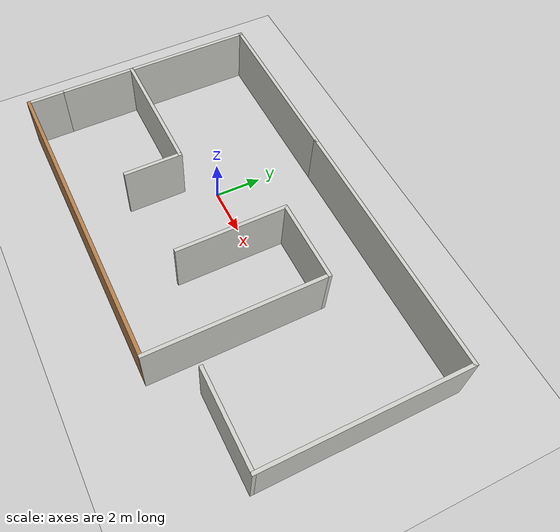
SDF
<sdf version="1.7">
 <world name="default">
  <light name="sun" type="directional">
   <pose>0 0 10 0 -0 0</pose>
   <diffuse>0.8 0.8 0.8 1</diffuse>
   <specular>0.2 0.2 0.2 1</specular>
   <attenuation>
    <range>1000</range>
    <constant>0.9</constant>
    <linear>0.01</linear>
    <quadratic>0.001</quadratic>
   </attenuation>
   <direction>-0.5 0.1 -0.9</direction>
   <spot><inner_angle>0</inner_angle><outer_angle>0</outer_angle><falloff>0</falloff></spot>
  </light>
  <model name="ground_plane">
   <static>1</static>
   <link name="link">
    <collision name="collision">
     <geometry><plane><normal>0 0 1</normal><size>100 100</size></plane></geometry>
     <surface>
      <contact><collide_bitmask>65535</collide_bitmask></contact>
      <friction><ode><mu>100</mu><mu2>50</mu2></ode></friction>
     </surface>
    </collision>
    <visual name="visual">
     <cast_shadows>0</cast_shadows>
     <geometry><plane><normal>0 0 1</normal><size>100 100</size></plane></geometry>
     <material>
      <script><uri>file://media/materials/scripts/gazebo.material</uri><name>Gazebo/Grey</name></script>
     </material>
    </visual>
   </link>
  </model>
  <gravity>0 0 -9.8</gravity>
  <magnetic_field>6e-06 2.3e-05 -4.2e-05</magnetic_field>
  <atmosphere type="adiabatic"/>
  <physics type="ode">
   <max_step_size>0.001</max_step_size>
   <real_time_factor>1</real_time_factor>
   <real_time_update_rate>1000</real_time_update_rate>
  </physics>
  <scene><ambient>0.4 0.4 0.4 1</ambient><background>0.7 0.7 0.7 1</background><shadows>1</shadows></scene>
  <spherical_coordinates>
   <surface_model>EARTH_WGS84</surface_model>
   <latitude_deg>0</latitude_deg>
   <longitude_deg>0</longitude_deg>
   <elevation>0</elevation>
   <heading_deg>0</heading_deg>
  </spherical_coordinates>
  <model name="Untitled">
   <link name="Wall_1">
    <pose>-8.975 -1.875 0 0 -0 1.5708</pose>
    <visual name="Wall_1_Visual">
     <pose>0 0 1.25 0 -0 0</pose>
     <geometry><box><size>3.25 0.15 2.5</size></box></geometry>
     <material>
      <script><uri>file://media/materials/scripts/gazebo.material</uri><name>Gazebo/CeilingTiled</name></script>
      <ambient>1 1 1 1</ambient>
      <shader type="pixel"/>
     </material>
     <meta><layer>0</layer></meta>
    </visual>
    <collision name="Wall_1_Collision">
     <pose>0 0 1.25 0 -0 0</pose>
     <geometry><box><size>3.25 0.15 2.5</size></box></geometry>
     <surface>
      <friction>
       <ode><mu>1</mu><mu2>1</mu2><fdir1>0 0 0</fdir1><slip1>0</slip1><slip2>0</slip2></ode>
       <torsional>
        <coefficient>1</coefficient>
        <patch_radius>0</patch_radius>
        <surface_radius>0</surface_radius>
        <use_patch_radius>1</use_patch_radius>
        <ode><slip>0</slip></ode>
       </torsional>
      </friction>
      <bounce><restitution_coefficient>0</restitution_coefficient><threshold>1e+06</threshold></bounce>
      <contact>
       <collide_without_contact>0</collide_without_contact>
       <collide_without_contact_bitmask>1</collide_without_contact_bitmask>
       <collide_bitmask>1</collide_bitmask>
       <ode>
        <soft_cfm>0</soft_cfm>
        <soft_erp>0.2</soft_erp>
        <kp>1e+13</kp>
        <kd>1</kd>
        <max_vel>0.01</max_vel>
        <min_depth>0</min_depth>
       </ode>
       <bullet>
        <split_impulse>1</split_impulse>
        <split_impulse_penetration_threshold>-0.01</split_impulse_penetration_threshold>
        <soft_cfm>0</soft_cfm>
        <soft_erp>0.2</soft_erp>
        <kp>1e+13</kp>
        <kd>1</kd>
       </bullet>
      </contact>
     </surface>
    </collision>
   </link>
   <link name="Wall_11">
    <pose>-8.975 2.35 0 0 -0 1.5708</pose>
    <visual name="Wall_11_Visual">
     <pose>0 0 1.25 0 -0 0</pose>
     <geometry><box><size>5.5 0.15 2.5</size></box></geometry>
     <material>
      <script><uri>file://media/materials/scripts/gazebo.material</uri><name>Gazebo/CeilingTiled</name></script>
      <ambient>1 1 1 1</ambient>
      <shader type="pixel"/>
     </material>
     <meta><layer>0</layer></meta>
    </visual>
    <collision name="Wall_11_Collision">
     <pose>0 0 1.25 0 -0 0</pose>
     <geometry><box><size>5.5 0.15 2.5</size></box></geometry>
     <surface>
      <friction>
       <ode><mu>1</mu><mu2>1</mu2><fdir1>0 0 0</fdir1><slip1>0</slip1><slip2>0</slip2></ode>
       <torsional>
        <coefficient>1</coefficient>
        <patch_radius>0</patch_radius>
        <surface_radius>0</surface_radius>
        <use_patch_radius>1</use_patch_radius>
        <ode><slip>0</slip></ode>
       </torsional>
      </friction>
      <bounce><restitution_coefficient>0</restitution_coefficient><threshold>1e+06</threshold></bounce>
      <contact>
       <collide_without_contact>0</collide_without_contact>
       <collide_without_contact_bitmask>1</collide_without_contact_bitmask>
       <collide_bitmask>1</collide_bitmask>
       <ode>
        <soft_cfm>0</soft_cfm>
        <soft_erp>0.2</soft_erp>
        <kp>1e+13</kp>
        <kd>1</kd>
        <max_vel>0.01</max_vel>
        <min_depth>0</min_depth>
       </ode>
       <bullet>
        <split_impulse>1</split_impulse>
        <split_impulse_penetration_threshold>-0.01</split_impulse_penetration_threshold>
        <soft_cfm>0</soft_cfm>
        <soft_erp>0.2</soft_erp>
        <kp>1e+13</kp>
        <kd>1</kd>
       </bullet>
      </contact>
     </surface>
    </collision>
   </link>
   <link name="Wall_12">
    <pose>-5.425 5.025 0 0 -0 0</pose>
    <visual name="Wall_12_Visual">
     <pose>0 0 1.25 0 -0 0</pose>
     <geometry><box><size>7.25 0.15 2.5</size></box></geometry>
     <material>
      <script><uri>file://media/materials/scripts/gazebo.material</uri><name>Gazebo/CeilingTiled</name></script>
      <ambient>1 1 1 1</ambient>
      <shader type="pixel"/>
     </material>
     <meta><layer>0</layer></meta>
    </visual>
    <collision name="Wall_12_Collision">
     <pose>0 0 1.25 0 -0 0</pose>
     <geometry><box><size>7.25 0.15 2.5</size></box></geometry>
     <surface>
      <friction>
       <ode><mu>1</mu><mu2>1</mu2><fdir1>0 0 0</fdir1><slip1>0</slip1><slip2>0</slip2></ode>
       <torsional>
        <coefficient>1</coefficient>
        <patch_radius>0</patch_radius>
        <surface_radius>0</surface_radius>
        <use_patch_radius>1</use_patch_radius>
        <ode><slip>0</slip></ode>
       </torsional>
      </friction>
      <bounce><restitution_coefficient>0</restitution_coefficient><threshold>1e+06</threshold></bounce>
      <contact>
       <collide_without_contact>0</collide_without_contact>
       <collide_without_contact_bitmask>1</collide_without_contact_bitmask>
       <collide_bitmask>1</collide_bitmask>
       <ode>
        <soft_cfm>0</soft_cfm>
        <soft_erp>0.2</soft_erp>
        <kp>1e+13</kp>
        <kd>1</kd>
        <max_vel>0.01</max_vel>
        <min_depth>0</min_depth>
       </ode>
       <bullet>
        <split_impulse>1</split_impulse>
        <split_impulse_penetration_threshold>-0.01</split_impulse_penetration_threshold>
        <soft_cfm>0</soft_cfm>
        <soft_erp>0.2</soft_erp>
        <kp>1e+13</kp>
        <kd>1</kd>
       </bullet>
      </contact>
     </surface>
    </collision>
   </link>
   <link name="Wall_13">
    <pose>3.55 5.025 0 0 -0 0</pose>
    <visual name="Wall_13_Visual">
     <pose>0 0 1.25 0 -0 0</pose>
     <geometry><box><size>11 0.15 2.5</size></box></geometry>
     <material>
      <script><uri>file://media/materials/scripts/gazebo.material</uri><name>Gazebo/CeilingTiled</name></script>
      <ambient>1 1 1 1</ambient>
      <shader type="pixel"/>
     </material>
     <meta><layer>0</layer></meta>
    </visual>
    <collision name="Wall_13_Collision">
     <pose>0 0 1.25 0 -0 0</pose>
     <geometry><box><size>11 0.15 2.5</size></box></geometry>
     <surface>
      <friction>
       <ode><mu>1</mu><mu2>1</mu2><fdir1>0 0 0</fdir1><slip1>0</slip1><slip2>0</slip2></ode>
       <torsional>
        <coefficient>1</coefficient>
        <patch_radius>0</patch_radius>
        <surface_radius>0</surface_radius>
        <use_patch_radius>1</use_patch_radius>
        <ode><slip>0</slip></ode>
       </torsional>
      </friction>
      <bounce><restitution_coefficient>0</restitution_coefficient><threshold>1e+06</threshold></bounce>
      <contact>
       <collide_without_contact>0</collide_without_contact>
       <collide_without_contact_bitmask>1</collide_without_contact_bitmask>
       <collide_bitmask>1</collide_bitmask>
       <ode>
        <soft_cfm>0</soft_cfm>
        <soft_erp>0.2</soft_erp>
        <kp>1e+13</kp>
        <kd>1</kd>
        <max_vel>0.01</max_vel>
        <min_depth>0</min_depth>
       </ode>
       <bullet>
        <split_impulse>1</split_impulse>
        <split_impulse_penetration_threshold>-0.01</split_impulse_penetration_threshold>
        <soft_cfm>0</soft_cfm>
        <soft_erp>0.2</soft_erp>
        <kp>1e+13</kp>
        <kd>1</kd>
       </bullet>
      </contact>
     </surface>
    </collision>
   </link>
   <link name="Wall_14">
    <pose>8.975 0.85 0 0 0 -1.5708</pose>
    <visual name="Wall_14_Visual">
     <pose>0 0 1.25 0 -0 0</pose>
     <geometry><box><size>8.5 0.15 2.5</size></box></geometry>
     <material>
      <script><uri>file://media/materials/scripts/gazebo.material</uri><name>Gazebo/CeilingTiled</name></script>
      <ambient>1 1 1 1</ambient>
      <shader type="pixel"/>
     </material>
     <meta><layer>0</layer></meta>
    </visual>
    <collision name="Wall_14_Collision">
     <pose>0 0 1.25 0 -0 0</pose>
     <geometry><box><size>8.5 0.15 2.5</size></box></geometry>
     <surface>
      <friction>
       <ode><mu>1</mu><mu2>1</mu2><fdir1>0 0 0</fdir1><slip1>0</slip1><slip2>0</slip2></ode>
       <torsional>
        <coefficient>1</coefficient>
        <patch_radius>0</patch_radius>
        <surface_radius>0</surface_radius>
        <use_patch_radius>1</use_patch_radius>
        <ode><slip>0</slip></ode>
       </torsional>
      </friction>
      <bounce><restitution_coefficient>0</restitution_coefficient><threshold>1e+06</threshold></bounce>
      <contact>
       <collide_without_contact>0</collide_without_contact>
       <collide_without_contact_bitmask>1</collide_without_contact_bitmask>
       <collide_bitmask>1</collide_bitmask>
       <ode>
        <soft_cfm>0</soft_cfm>
        <soft_erp>0.2</soft_erp>
        <kp>1e+13</kp>
        <kd>1</kd>
        <max_vel>0.01</max_vel>
        <min_depth>0</min_depth>
       </ode>
       <bullet>
        <split_impulse>1</split_impulse>
        <split_impulse_penetration_threshold>-0.01</split_impulse_penetration_threshold>
        <soft_cfm>0</soft_cfm>
        <soft_erp>0.2</soft_erp>
        <kp>1e+13</kp>
        <kd>1</kd>
       </bullet>
      </contact>
     </surface>
    </collision>
   </link>
   <link name="Wall_15">
    <pose>7.05 -3.325 0 0 -0 3.14159</pose>
    <visual name="Wall_15_Visual">
     <pose>0 0 1.25 0 -0 0</pose>
     <geometry><box><size>4 0.15 2.5</size></box></geometry>
     <material>
      <script><uri>file://media/materials/scripts/gazebo.material</uri><name>Gazebo/CeilingTiled</name></script>
      <ambient>1 1 1 1</ambient>
      <shader type="pixel"/>
     </material>
     <meta><layer>0</layer></meta>
    </visual>
    <collision name="Wall_15_Collision">
     <pose>0 0 1.25 0 -0 0</pose>
     <geometry><box><size>4 0.15 2.5</size></box></geometry>
     <surface>
      <friction>
       <ode><mu>1</mu><mu2>1</mu2><fdir1>0 0 0</fdir1><slip1>0</slip1><slip2>0</slip2></ode>
       <torsional>
        <coefficient>1</coefficient>
        <patch_radius>0</patch_radius>
        <surface_radius>0</surface_radius>
        <use_patch_radius>1</use_patch_radius>
        <ode><slip>0</slip></ode>
       </torsional>
      </friction>
      <bounce><restitution_coefficient>0</restitution_coefficient><threshold>1e+06</threshold></bounce>
      <contact>
       <collide_without_contact>0</collide_without_contact>
       <collide_without_contact_bitmask>1</collide_without_contact_bitmask>
       <collide_bitmask>1</collide_bitmask>
       <ode>
        <soft_cfm>0</soft_cfm>
        <soft_erp>0.2</soft_erp>
        <kp>1e+13</kp>
        <kd>1</kd>
        <max_vel>0.01</max_vel>
        <min_depth>0</min_depth>
       </ode>
       <bullet>
        <split_impulse>1</split_impulse>
        <split_impulse_penetration_threshold>-0.01</split_impulse_penetration_threshold>
        <soft_cfm>0</soft_cfm>
        <soft_erp>0.2</soft_erp>
        <kp>1e+13</kp>
        <kd>1</kd>
       </bullet>
      </contact>
     </surface>
    </collision>
   </link>
   <link name="Wall_2">
    <pose>-6.3 -0.325 0 0 -0 0</pose>
    <visual name="Wall_2_Visual">
     <pose>0 0 1.25 0 -0 0</pose>
     <geometry><box><size>5.5 0.15 2.5</size></box></geometry>
     <material>
      <script><uri>file://media/materials/scripts/gazebo.material</uri><name>Gazebo/CeilingTiled</name></script>
      <ambient>1 1 1 1</ambient>
      <shader type="pixel"/>
     </material>
     <meta><layer>0</layer></meta>
    </visual>
    <collision name="Wall_2_Collision">
     <pose>0 0 1.25 0 -0 0</pose>
     <geometry><box><size>5.5 0.15 2.5</size></box></geometry>
     <surface>
      <friction>
       <ode><mu>1</mu><mu2>1</mu2><fdir1>0 0 0</fdir1><slip1>0</slip1><slip2>0</slip2></ode>
       <torsional>
        <coefficient>1</coefficient>
        <patch_radius>0</patch_radius>
        <surface_radius>0</surface_radius>
        <use_patch_radius>1</use_patch_radius>
        <ode><slip>0</slip></ode>
       </torsional>
      </friction>
      <bounce><restitution_coefficient>0</restitution_coefficient><threshold>1e+06</threshold></bounce>
      <contact>
       <collide_without_contact>0</collide_without_contact>
       <collide_without_contact_bitmask>1</collide_without_contact_bitmask>
       <collide_bitmask>1</collide_bitmask>
       <ode>
        <soft_cfm>0</soft_cfm>
        <soft_erp>0.2</soft_erp>
        <kp>1e+13</kp>
        <kd>1</kd>
        <max_vel>0.01</max_vel>
        <min_depth>0</min_depth>
       </ode>
       <bullet>
        <split_impulse>1</split_impulse>
        <split_impulse_penetration_threshold>-0.01</split_impulse_penetration_threshold>
        <soft_cfm>0</soft_cfm>
        <soft_erp>0.2</soft_erp>
        <kp>1e+13</kp>
        <kd>1</kd>
       </bullet>
      </contact>
     </surface>
    </collision>
   </link>
   <link name="Wall_3">
    <pose>-3.625 -1.5 0 0 0 -1.5708</pose>
    <visual name="Wall_3_Visual">
     <pose>0 0 1.25 0 -0 0</pose>
     <geometry><box><size>2.5 0.15 2.5</size></box></geometry>
     <material>
      <script><uri>file://media/materials/scripts/gazebo.material</uri><name>Gazebo/CeilingTiled</name></script>
      <ambient>1 1 1 1</ambient>
      <shader type="pixel"/>
     </material>
     <meta><layer>0</layer></meta>
    </visual>
    <collision name="Wall_3_Collision">
     <pose>0 0 1.25 0 -0 0</pose>
     <geometry><box><size>2.5 0.15 2.5</size></box></geometry>
     <surface>
      <friction>
       <ode><mu>1</mu><mu2>1</mu2><fdir1>0 0 0</fdir1><slip1>0</slip1><slip2>0</slip2></ode>
       <torsional>
        <coefficient>1</coefficient>
        <patch_radius>0</patch_radius>
        <surface_radius>0</surface_radius>
        <use_patch_radius>1</use_patch_radius>
        <ode><slip>0</slip></ode>
       </torsional>
      </friction>
      <bounce><restitution_coefficient>0</restitution_coefficient><threshold>1e+06</threshold></bounce>
      <contact>
       <collide_without_contact>0</collide_without_contact>
       <collide_without_contact_bitmask>1</collide_without_contact_bitmask>
       <collide_bitmask>1</collide_bitmask>
       <ode>
        <soft_cfm>0</soft_cfm>
        <soft_erp>0.2</soft_erp>
        <kp>1e+13</kp>
        <kd>1</kd>
        <max_vel>0.01</max_vel>
        <min_depth>0</min_depth>
       </ode>
       <bullet>
        <split_impulse>1</split_impulse>
        <split_impulse_penetration_threshold>-0.01</split_impulse_penetration_threshold>
        <soft_cfm>0</soft_cfm>
        <soft_erp>0.2</soft_erp>
        <kp>1e+13</kp>
        <kd>1</kd>
       </bullet>
      </contact>
     </surface>
    </collision>
   </link>
   <link name="Wall_5">
    <pose>-8.975 -4.225 0 0 0 -1.5708</pose>
    <visual name="Wall_5_Visual">
     <pose>0 0 1.25 0 -0 0</pose>
     <geometry><box><size>1.75 0.15 2.5</size></box></geometry>
     <material>
      <script><uri>file://media/materials/scripts/gazebo.material</uri><name>Gazebo/CeilingTiled</name></script>
      <ambient>1 1 1 1</ambient>
      <shader type="pixel"/>
     </material>
     <meta><layer>0</layer></meta>
    </visual>
    <collision name="Wall_5_Collision">
     <pose>0 0 1.25 0 -0 0</pose>
     <geometry><box><size>1.75 0.15 2.5</size></box></geometry>
     <surface>
      <friction>
       <ode><mu>1</mu><mu2>1</mu2><fdir1>0 0 0</fdir1><slip1>0</slip1><slip2>0</slip2></ode>
       <torsional>
        <coefficient>1</coefficient>
        <patch_radius>0</patch_radius>
        <surface_radius>0</surface_radius>
        <use_patch_radius>1</use_patch_radius>
        <ode><slip>0</slip></ode>
       </torsional>
      </friction>
      <bounce><restitution_coefficient>0</restitution_coefficient><threshold>1e+06</threshold></bounce>
      <contact>
       <collide_without_contact>0</collide_without_contact>
       <collide_without_contact_bitmask>1</collide_without_contact_bitmask>
       <collide_bitmask>1</collide_bitmask>
       <ode>
        <soft_cfm>0</soft_cfm>
        <soft_erp>0.2</soft_erp>
        <kp>1e+13</kp>
        <kd>1</kd>
        <max_vel>0.01</max_vel>
        <min_depth>0</min_depth>
       </ode>
       <bullet>
        <split_impulse>1</split_impulse>
        <split_impulse_penetration_threshold>-0.01</split_impulse_penetration_threshold>
        <soft_cfm>0</soft_cfm>
        <soft_erp>0.2</soft_erp>
        <kp>1e+13</kp>
        <kd>1</kd>
       </bullet>
      </contact>
     </surface>
    </collision>
   </link>
   <link name="Wall_6">
    <pose>-2.55 -5.025 0 0 -0 0</pose>
    <inertial>
     <mass>1</mass>
     <inertia><ixx>1</ixx><ixy>0</ixy><ixz>0</ixz><iyy>1</iyy><iyz>0</iyz><izz>1</izz></inertia>
    </inertial>
    <visual name="Wall_6_Visual">
     <pose>0 0 1.25 0 -0 0</pose>
     <geometry><box><size>13 0.15 2.5</size></box></geometry>
     <material>
      <script><uri>file://media/materials/scripts/gazebo.material</uri><name>Gazebo/Wood</name></script>
      <ambient>1 1 1 1</ambient>
      <shader type="pixel"><normal_map>__default__</normal_map></shader>
      <diffuse>1 1 1 1</diffuse>
      <specular>0.2 0.2 0.2 1</specular>
      <emissive>0 0 0 1</emissive>
     </material>
     <meta><layer>0</layer></meta>
    </visual>
    <collision name="Wall_6_Collision">
     <pose>0 0 1.25 0 -0 0</pose>
     <geometry><box><size>13 0.15 2.5</size></box></geometry>
     <surface>
      <friction>
       <ode><mu>1</mu><mu2>1</mu2><fdir1>0 0 0</fdir1><slip1>0</slip1><slip2>0</slip2></ode>
       <torsional>
        <coefficient>1</coefficient>
        <patch_radius>0</patch_radius>
        <surface_radius>0</surface_radius>
        <use_patch_radius>1</use_patch_radius>
        <ode><slip>0</slip></ode>
       </torsional>
      </friction>
      <bounce><restitution_coefficient>0</restitution_coefficient><threshold>1e+06</threshold></bounce>
      <contact>
       <collide_without_contact>0</collide_without_contact>
       <collide_without_contact_bitmask>1</collide_without_contact_bitmask>
       <collide_bitmask>1</collide_bitmask>
       <ode>
        <soft_cfm>0</soft_cfm>
        <soft_erp>0.2</soft_erp>
        <kp>1e+13</kp>
        <kd>1</kd>
        <max_vel>0.01</max_vel>
        <min_depth>0</min_depth>
       </ode>
       <bullet>
        <split_impulse>1</split_impulse>
        <split_impulse_penetration_threshold>-0.01</split_impulse_penetration_threshold>
        <soft_cfm>0</soft_cfm>
        <soft_erp>0.2</soft_erp>
        <kp>1e+13</kp>
        <kd>1</kd>
       </bullet>
      </contact>
     </surface>
    </collision>
   </link>
   <link name="Wall_7">
    <pose>3.875 -1.35 0 0 -0 1.5708</pose>
    <visual name="Wall_7_Visual">
     <pose>0 0 1.25 0 -0 0</pose>
     <geometry><box><size>7.5 0.15 2.5</size></box></geometry>
     <material>
      <script><uri>file://media/materials/scripts/gazebo.material</uri><name>Gazebo/CeilingTiled</name></script>
      <ambient>1 1 1 1</ambient>
      <shader type="pixel"/>
     </material>
     <meta><layer>0</layer></meta>
    </visual>
    <collision name="Wall_7_Collision">
     <pose>0 0 1.25 0 -0 0</pose>
     <geometry><box><size>7.5 0.15 2.5</size></box></geometry>
     <surface>
      <friction>
       <ode><mu>1</mu><mu2>1</mu2><fdir1>0 0 0</fdir1><slip1>0</slip1><slip2>0</slip2></ode>
       <torsional>
        <coefficient>1</coefficient>
        <patch_radius>0</patch_radius>
        <surface_radius>0</surface_radius>
        <use_patch_radius>1</use_patch_radius>
        <ode><slip>0</slip></ode>
       </torsional>
      </friction>
      <bounce><restitution_coefficient>0</restitution_coefficient><threshold>1e+06</threshold></bounce>
      <contact>
       <collide_without_contact>0</collide_without_contact>
       <collide_without_contact_bitmask>1</collide_without_contact_bitmask>
       <collide_bitmask>1</collide_bitmask>
       <ode>
        <soft_cfm>0</soft_cfm>
        <soft_erp>0.2</soft_erp>
        <kp>1e+13</kp>
        <kd>1</kd>
        <max_vel>0.01</max_vel>
        <min_depth>0</min_depth>
       </ode>
       <bullet>
        <split_impulse>1</split_impulse>
        <split_impulse_penetration_threshold>-0.01</split_impulse_penetration_threshold>
        <soft_cfm>0</soft_cfm>
        <soft_erp>0.2</soft_erp>
        <kp>1e+13</kp>
        <kd>1</kd>
       </bullet>
      </contact>
     </surface>
    </collision>
   </link>
   <link name="Wall_8">
    <pose>2.2 2.325 0 0 -0 3.14159</pose>
    <visual name="Wall_8_Visual">
     <pose>0 0 1.25 0 -0 0</pose>
     <geometry><box><size>3.5 0.15 2.5</size></box></geometry>
     <material>
      <script><uri>file://media/materials/scripts/gazebo.material</uri><name>Gazebo/CeilingTiled</name></script>
      <ambient>1 1 1 1</ambient>
      <shader type="pixel"/>
     </material>
     <meta><layer>0</layer></meta>
    </visual>
    <collision name="Wall_8_Collision">
     <pose>0 0 1.25 0 -0 0</pose>
     <geometry><box><size>3.5 0.15 2.5</size></box></geometry>
     <surface>
      <friction>
       <ode><mu>1</mu><mu2>1</mu2><fdir1>0 0 0</fdir1><slip1>0</slip1><slip2>0</slip2></ode>
       <torsional>
        <coefficient>1</coefficient>
        <patch_radius>0</patch_radius>
        <surface_radius>0</surface_radius>
        <use_patch_radius>1</use_patch_radius>
        <ode><slip>0</slip></ode>
       </torsional>
      </friction>
      <bounce><restitution_coefficient>0</restitution_coefficient><threshold>1e+06</threshold></bounce>
      <contact>
       <collide_without_contact>0</collide_without_contact>
       <collide_without_contact_bitmask>1</collide_without_contact_bitmask>
       <collide_bitmask>1</collide_bitmask>
       <ode>
        <soft_cfm>0</soft_cfm>
        <soft_erp>0.2</soft_erp>
        <kp>1e+13</kp>
        <kd>1</kd>
        <max_vel>0.01</max_vel>
        <min_depth>0</min_depth>
       </ode>
       <bullet>
        <split_impulse>1</split_impulse>
        <split_impulse_penetration_threshold>-0.01</split_impulse_penetration_threshold>
        <soft_cfm>0</soft_cfm>
        <soft_erp>0.2</soft_erp>
        <kp>1e+13</kp>
        <kd>1</kd>
       </bullet>
      </contact>
     </surface>
    </collision>
   </link>
   <link name="Wall_9">
    <pose>0.525 0.025 0 0 0 -1.5708</pose>
    <visual name="Wall_9_Visual">
     <pose>0 0 1.25 0 -0 0</pose>
     <geometry><box><size>4.75 0.15 2.5</size></box></geometry>
     <material>
      <script><uri>file://media/materials/scripts/gazebo.material</uri><name>Gazebo/CeilingTiled</name></script>
      <ambient>1 1 1 1</ambient>
      <shader type="pixel"/>
     </material>
     <meta><layer>0</layer></meta>
    </visual>
    <collision name="Wall_9_Collision">
     <pose>0 0 1.25 0 -0 0</pose>
     <geometry><box><size>4.75 0.15 2.5</size></box></geometry>
     <surface>
      <friction>
       <ode><mu>1</mu><mu2>1</mu2><fdir1>0 0 0</fdir1><slip1>0</slip1><slip2>0</slip2></ode>
       <torsional>
        <coefficient>1</coefficient>
        <patch_radius>0</patch_radius>
        <surface_radius>0</surface_radius>
        <use_patch_radius>1</use_patch_radius>
        <ode><slip>0</slip></ode>
       </torsional>
      </friction>
      <bounce><restitution_coefficient>0</restitution_coefficient><threshold>1e+06</threshold></bounce>
      <contact>
       <collide_without_contact>0</collide_without_contact>
       <collide_without_contact_bitmask>1</collide_without_contact_bitmask>
       <collide_bitmask>1</collide_bitmask>
       <ode>
        <soft_cfm>0</soft_cfm>
        <soft_erp>0.2</soft_erp>
        <kp>1e+13</kp>
        <kd>1</kd>
        <max_vel>0.01</max_vel>
        <min_depth>0</min_depth>
       </ode>
       <bullet>
        <split_impulse>1</split_impulse>
        <split_impulse_penetration_threshold>-0.01</split_impulse_penetration_threshold>
        <soft_cfm>0</soft_cfm>
        <soft_erp>0.2</soft_erp>
        <kp>1e+13</kp>
        <kd>1</kd>
       </bullet>
      </contact>
     </surface>
    </collision>
   </link>
   <static>1</static>
   <pose>2.745 -0.925 0 0 -0 0</pose>
  </model>
 </world>
</sdf>
